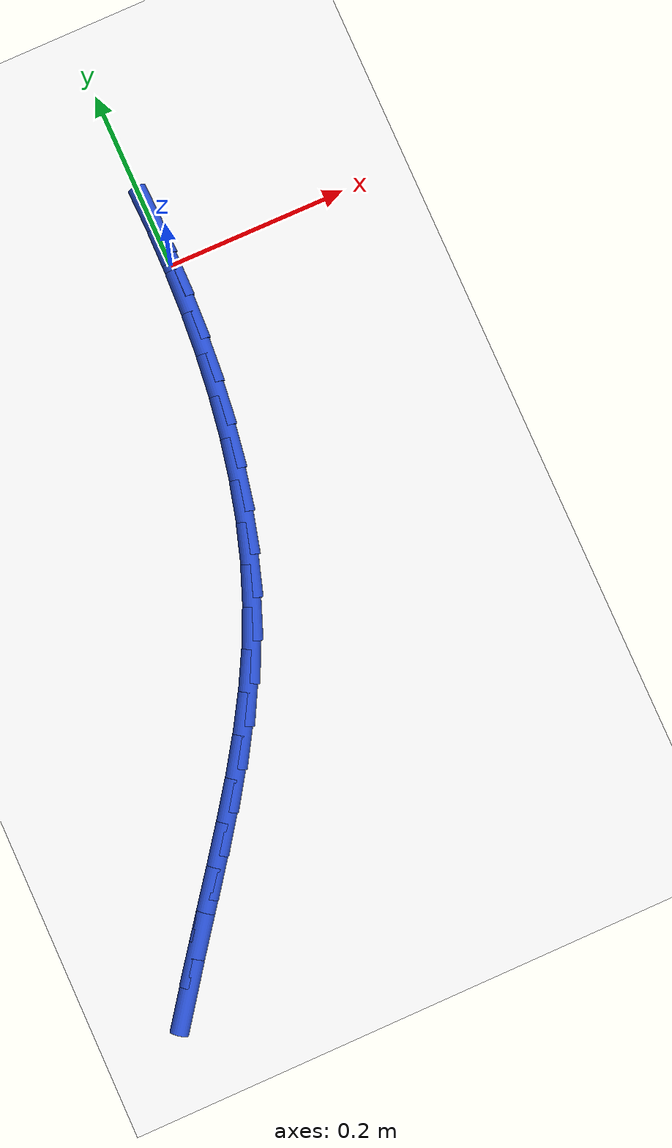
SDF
<sdf version="1.6">
 <world name="default">
  <model name="ground_plane">
   <static>1</static>
   <link name="link">
    <collision name="collision">
     <geometry><plane><normal>0 0 1</normal><size>100 100</size></plane></geometry>
     <surface><friction><ode><mu>100</mu><mu2>50</mu2></ode></friction></surface>
    </collision>
    <visual name="visual">
     <cast_shadows>0</cast_shadows>
     <geometry><plane><normal>0 0 1</normal><size>100 100</size></plane></geometry>
     <material>
      <script><uri>file://media/materials/scripts/gazebo.material</uri><name>Gazebo/WhiteGlow</name></script>
     </material>
    </visual>
   </link>
  </model>
  <model name="line">
   <link name="link_0">
    <pose>-6.245004513516506e-17 -5.551115123125783e-17 0.01 0 1.57 1.5629346635734251</pose>
    <collision name="collision">
     <geometry><cylinder><radius>0.01</radius><length>0.08</length></cylinder></geometry>
    </collision>
    <visual name="visual">
     <material>
      <script><name>Gazebo/Blue</name><uri>file://media/materials/scripts/gazebo.material</uri></script>
     </material>
     <geometry><cylinder><radius>0.01</radius><length>0.08</length></cylinder></geometry>
    </visual>
   </link>
   <link name="link_1">
    <pose>0.0003856215391408612 0.0490498745243092 0.01 0 1.57 -1.5426126082793463</pose>
    <collision name="collision">
     <geometry><cylinder><radius>0.01</radius><length>0.08</length></cylinder></geometry>
    </collision>
    <visual name="visual">
     <material>
      <script><name>Gazebo/Blue</name><uri>file://media/materials/scripts/gazebo.material</uri></script>
     </material>
     <geometry><cylinder><radius>0.01</radius><length>0.08</length></cylinder></geometry>
    </visual>
   </link>
   <link name="link_143">
    <pose>-0.29421330345235547 -0.7089495714375991 0.01 0 1.57 0.9413193991657214</pose>
    <collision name="collision">
     <geometry><cylinder><radius>0.01</radius><length>0.08</length></cylinder></geometry>
    </collision>
    <visual name="visual">
     <material>
      <script><name>Gazebo/Blue</name><uri>file://media/materials/scripts/gazebo.material</uri></script>
     </material>
     <geometry><cylinder><radius>0.01</radius><length>0.08</length></cylinder></geometry>
    </visual>
   </link>
   <link name="link_144">
    <pose>-0.2658207336164107 -0.6699655974616125 0.01 0 1.57 0.9307517420017201</pose>
    <collision name="collision">
     <geometry><cylinder><radius>0.01</radius><length>0.08</length></cylinder></geometry>
    </collision>
    <visual name="visual">
     <material>
      <script><name>Gazebo/Blue</name><uri>file://media/materials/scripts/gazebo.material</uri></script>
     </material>
     <geometry><cylinder><radius>0.01</radius><length>0.08</length></cylinder></geometry>
    </visual>
   </link>
   <link name="link_145">
    <pose>-0.23738996558489137 -0.6317836650075063 0.01 0 1.57 0.9296515686998654</pose>
    <collision name="collision">
     <geometry><cylinder><radius>0.01</radius><length>0.08</length></cylinder></geometry>
    </collision>
    <visual name="visual">
     <material>
      <script><name>Gazebo/Blue</name><uri>file://media/materials/scripts/gazebo.material</uri></script>
     </material>
     <geometry><cylinder><radius>0.01</radius><length>0.08</length></cylinder></geometry>
    </visual>
   </link>
   <link name="link_146">
    <pose>-0.20928147315051904 -0.5941211130468343 0.01 0 1.57 0.9383931516124392</pose>
    <collision name="collision">
     <geometry><cylinder><radius>0.01</radius><length>0.08</length></cylinder></geometry>
    </collision>
    <visual name="visual">
     <material>
      <script><name>Gazebo/Blue</name><uri>file://media/materials/scripts/gazebo.material</uri></script>
     </material>
     <geometry><cylinder><radius>0.01</radius><length>0.08</length></cylinder></geometry>
    </visual>
   </link>
   <link name="link_147">
    <pose>-0.18185574056341902 -0.5566952659829052 0.01 0 1.57 0.9573492884447119</pose>
    <collision name="collision">
     <geometry><cylinder><radius>0.01</radius><length>0.08</length></cylinder></geometry>
    </collision>
    <visual name="visual">
     <material>
      <script><name>Gazebo/Blue</name><uri>file://media/materials/scripts/gazebo.material</uri></script>
     </material>
     <geometry><cylinder><radius>0.01</radius><length>0.08</length></cylinder></geometry>
    </visual>
   </link>
   <link name="link_148">
    <pose>-0.15547325207371482 -0.519223448219025 0.01 0 1.57 0.9868623352196985</pose>
    <collision name="collision">
     <geometry><cylinder><radius>0.01</radius><length>0.08</length></cylinder></geometry>
    </collision>
    <visual name="visual">
     <material>
      <script><name>Gazebo/Blue</name><uri>file://media/materials/scripts/gazebo.material</uri></script>
     </material>
     <geometry><cylinder><radius>0.01</radius><length>0.08</length></cylinder></geometry>
    </visual>
   </link>
   <link name="link_149">
    <pose>-0.13049449193153073 -0.4814229841585017 0.01 0 1.57 1.0271770986971842</pose>
    <collision name="collision">
     <geometry><cylinder><radius>0.01</radius><length>0.08</length></cylinder></geometry>
    </collision>
    <visual name="visual">
     <material>
      <script><name>Gazebo/Blue</name><uri>file://media/materials/scripts/gazebo.material</uri></script>
     </material>
     <geometry><cylinder><radius>0.01</radius><length>0.08</length></cylinder></geometry>
    </visual>
   </link>
   <link name="link_150">
    <pose>-0.10727994438699091 -0.44301119820464235 0.01 0 1.57 1.0783314507851085</pose>
    <collision name="collision">
     <geometry><cylinder><radius>0.01</radius><length>0.08</length></cylinder></geometry>
    </collision>
    <visual name="visual">
     <material>
      <script><name>Gazebo/Blue</name><uri>file://media/materials/scripts/gazebo.material</uri></script>
     </material>
     <geometry><cylinder><radius>0.01</radius><length>0.08</length></cylinder></geometry>
    </visual>
   </link>
   <link name="link_151">
    <pose>-0.08619009369021914 -0.4037054147607534 0.01 0 1.57 1.1397613733833982</pose>
    <collision name="collision">
     <geometry><cylinder><radius>0.01</radius><length>0.08</length></cylinder></geometry>
    </collision>
    <visual name="visual">
     <material>
      <script><name>Gazebo/Blue</name><uri>file://media/materials/scripts/gazebo.material</uri></script>
     </material>
     <geometry><cylinder><radius>0.01</radius><length>0.08</length></cylinder></geometry>
    </visual>
   </link>
   <link name="link_152">
    <pose>-0.06757627257473318 -0.36322952201407216 0.01 0 1.57 1.2043940502115094</pose>
    <collision name="collision">
     <geometry><cylinder><radius>0.01</radius><length>0.08</length></cylinder></geometry>
    </collision>
    <visual name="visual">
     <material>
      <script><name>Gazebo/Blue</name><uri>file://media/materials/scripts/gazebo.material</uri></script>
     </material>
     <geometry><cylinder><radius>0.01</radius><length>0.08</length></cylinder></geometry>
    </visual>
   </link>
   <link name="link_153">
    <pose>-0.05155431636760178 -0.3214763150290196 0.01 0 1.57 1.2649428699784944</pose>
    <collision name="collision">
     <geometry><cylinder><radius>0.01</radius><length>0.08</length></cylinder></geometry>
    </collision>
    <visual name="visual">
     <material>
      <script><name>Gazebo/Blue</name><uri>file://media/materials/scripts/gazebo.material</uri></script>
     </material>
     <geometry><cylinder><radius>0.01</radius><length>0.08</length></cylinder></geometry>
    </visual>
   </link>
   <link name="link_154">
    <pose>-0.03798976731864339 -0.2785181077135473 0.01 0 1.57 1.3208457606370694</pose>
    <collision name="collision">
     <geometry><cylinder><radius>0.01</radius><length>0.08</length></cylinder></geometry>
    </collision>
    <visual name="visual">
     <material>
      <script><name>Gazebo/Blue</name><uri>file://media/materials/scripts/gazebo.material</uri></script>
     </material>
     <geometry><cylinder><radius>0.01</radius><length>0.08</length></cylinder></geometry>
    </visual>
   </link>
   <link name="link_155">
    <pose>-0.026736053582384317 -0.23443590262333555 0.01 0 1.57 1.372028676478435</pose>
    <collision name="collision">
     <geometry><cylinder><radius>0.01</radius><length>0.08</length></cylinder></geometry>
    </collision>
    <visual name="visual">
     <material>
      <script><name>Gazebo/Blue</name><uri>file://media/materials/scripts/gazebo.material</uri></script>
     </material>
     <geometry><cylinder><radius>0.01</radius><length>0.08</length></cylinder></geometry>
    </visual>
   </link>
   <link name="link_156">
    <pose>-0.017646603313350738 -0.18931070231406402 0.01 0 1.57 1.4185408228997154</pose>
    <collision name="collision">
     <geometry><cylinder><radius>0.01</radius><length>0.08</length></cylinder></geometry>
    </collision>
    <visual name="visual">
     <material>
      <script><name>Gazebo/Blue</name><uri>file://media/materials/scripts/gazebo.material</uri></script>
     </material>
     <geometry><cylinder><radius>0.01</radius><length>0.08</length></cylinder></geometry>
    </visual>
   </link>
   <link name="link_157">
    <pose>-0.01057484466606931 -0.14322350934141478 0.01 0 1.57 1.4605186985409062</pose>
    <collision name="collision">
     <geometry><cylinder><radius>0.01</radius><length>0.08</length></cylinder></geometry>
    </collision>
    <visual name="visual">
     <material>
      <script><name>Gazebo/Blue</name><uri>file://media/materials/scripts/gazebo.material</uri></script>
     </material>
     <geometry><cylinder><radius>0.01</radius><length>0.08</length></cylinder></geometry>
    </visual>
   </link>
   <link name="link_158">
    <pose>-0.005374205795066172 -0.09625532626106742 0.01 0 1.57 1.4981543465051463</pose>
    <collision name="collision">
     <geometry><cylinder><radius>0.01</radius><length>0.08</length></cylinder></geometry>
    </collision>
    <visual name="visual">
     <material>
      <script><name>Gazebo/Blue</name><uri>file://media/materials/scripts/gazebo.material</uri></script>
     </material>
     <geometry><cylinder><radius>0.01</radius><length>0.08</length></cylinder></geometry>
    </visual>
   </link>
   <link name="link_159">
    <pose>-0.0018981148548676478 -0.048487155628702316 0.01 0 1.57 1.531669549395664</pose>
    <collision name="collision">
     <geometry><cylinder><radius>0.01</radius><length>0.08</length></cylinder></geometry>
    </collision>
    <visual name="visual">
     <material>
      <script><name>Gazebo/Blue</name><uri>file://media/materials/scripts/gazebo.material</uri></script>
     </material>
     <geometry><cylinder><radius>0.01</radius><length>0.08</length></cylinder></geometry>
    </visual>
   </link>
   <link name="link_160">
    <pose>-5.204170427930421e-17 5.551115123125783e-17 0.01 0 1.57 1.561296168778265</pose>
    <collision name="collision">
     <geometry><cylinder><radius>0.01</radius><length>0.08</length></cylinder></geometry>
    </collision>
    <visual name="visual">
     <material>
      <script><name>Gazebo/Blue</name><uri>file://media/materials/scripts/gazebo.material</uri></script>
     </material>
     <geometry><cylinder><radius>0.01</radius><length>0.08</length></cylinder></geometry>
    </visual>
   </link>
  </model>
 </world>
</sdf>
